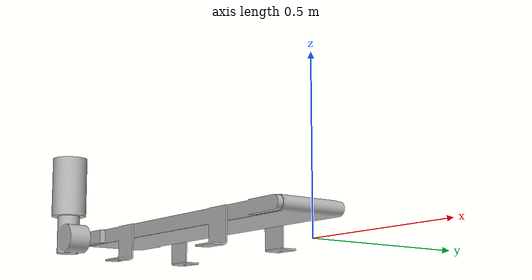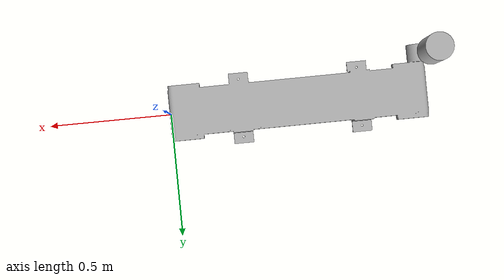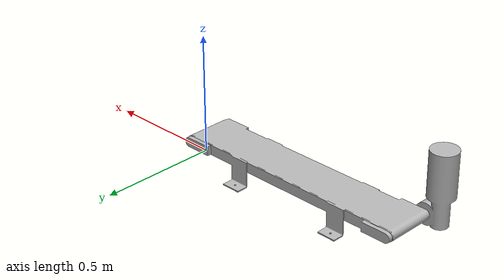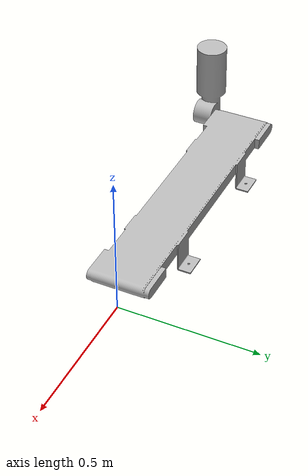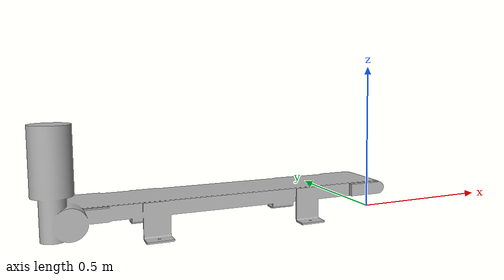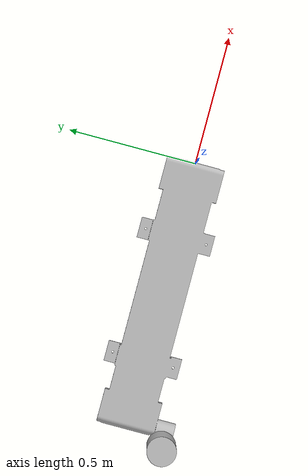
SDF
<?xml version="1.0" ?>
<sdf version="1.3">
  <model name="Conveyor_Belt_90degree">
    <static>true</static>
    <link name="link">
      <pose>0 0 0 0 0 0</pose>
      <collision name="collision">
        <geometry>
          <mesh>
            <uri>model://Conveyor_Belt_90degree/meshes/conveyor_belt_90degree.dae</uri>
          </mesh>
        </geometry>
      </collision>
      <visual name="visual">
        <geometry>
          <mesh>
            <uri>model://Conveyor_Belt_90degree/meshes/conveyor_belt_90degree.dae</uri>
          </mesh>
        </geometry>
      </visual>
    </link>
  </model>
</sdf>
